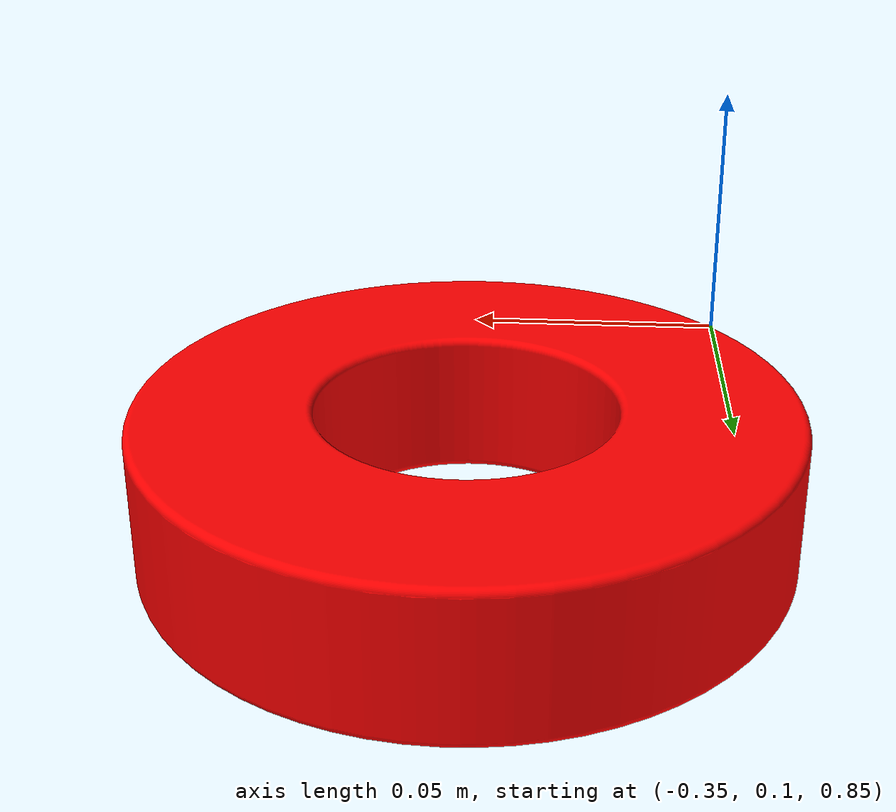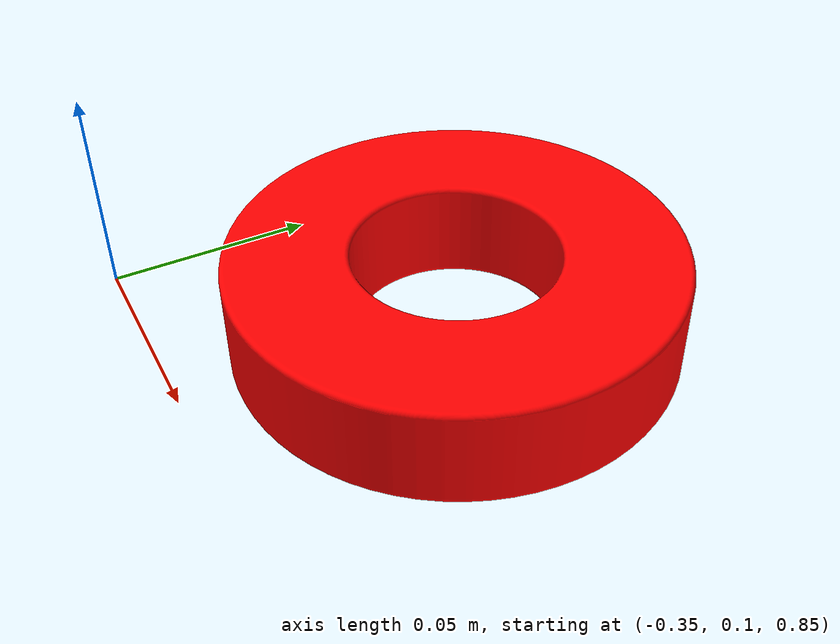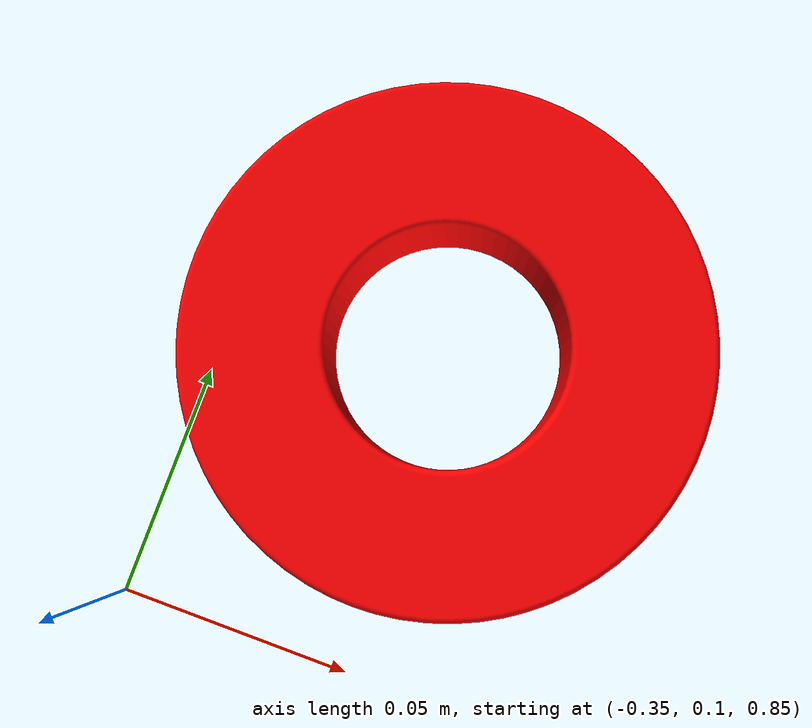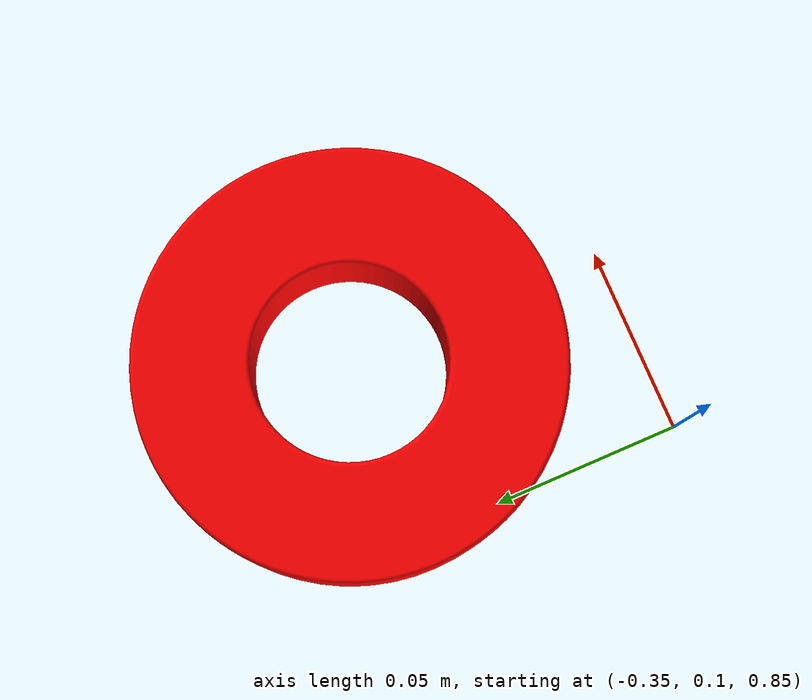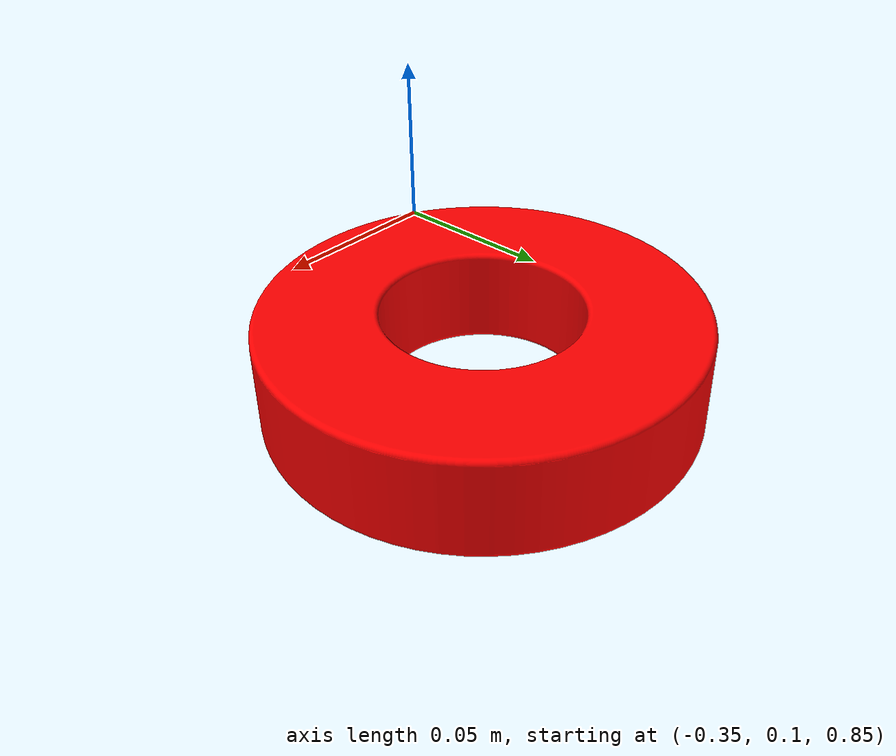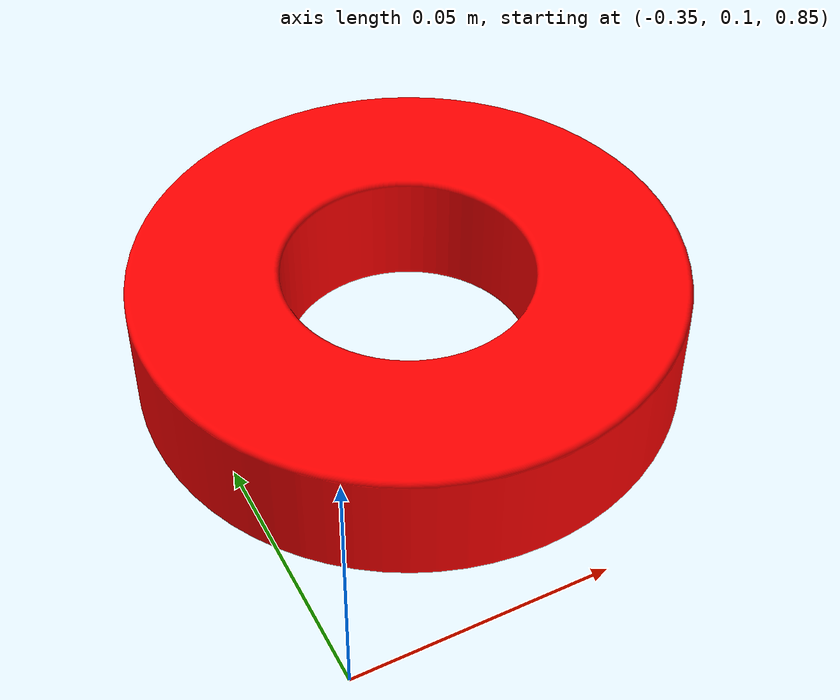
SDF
<sdf version="1.9">
 <world name="Rings">
  <model name="ground_plane">
   <static>true</static>
   <link name="link">
    <collision name="collision">
     <geometry><plane><normal>0 0 1</normal><size>100 100</size></plane></geometry>
    </collision>
    <visual name="visual">
     <geometry><plane><normal>0 0 1</normal><size>100 100</size></plane></geometry>
     <material>
      <ambient>0.8 0.8 0.8 1</ambient>
      <diffuse>0.8 0.8 0.8 1</diffuse>
      <specular>0.8 0.8 0.8 1</specular>
     </material>
    </visual>
    <inertial>
     <mass>1</mass>
     <inertia><ixx>1</ixx><ixy>0</ixy><ixz>0</ixz><iyy>1</iyy><iyz>0</iyz><izz>1</izz></inertia>
    </inertial>
   </link>
  </model>
  <model name="Ring_2">
   <link name="link">
    <visual name="visual">
     <geometry>
      <mesh>
       <uri>file:///home/alves/Documents/Classes/Fall23/MECH495/FinalProject/groupWS/install/teleop_tasks/share/teleop_tasks/worlds/../models/Ring.stl</uri>
      </mesh>
     </geometry>
     <material>
      <ambient>1 0 0 1</ambient>
      <diffuse>1 0 0 1</diffuse>
      <specular>0 0 0 0</specular>
      <emissive>0 0 0 1</emissive>
     </material>
    </visual>
    <collision name="collision">
     <geometry>
      <mesh>
       <uri>file:///home/alves/Documents/Classes/Fall23/MECH495/FinalProject/groupWS/install/teleop_tasks/share/teleop_tasks/worlds/../models/SimpleRing.stl</uri>
      </mesh>
     </geometry>
    </collision>
    <inertial>
     <mass>1</mass>
     <inertia><ixx>1</ixx><ixy>0</ixy><ixz>0</ixz><iyy>1</iyy><iyz>0</iyz><izz>1</izz></inertia>
    </inertial>
   </link>
   <pose>-0.30292 0.171223 0.839999 0 -0 -0</pose>
   <static>false</static>
  </model>
 </world>
</sdf>
